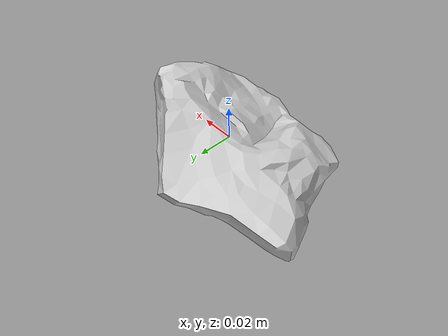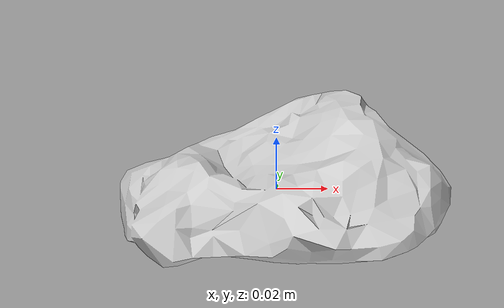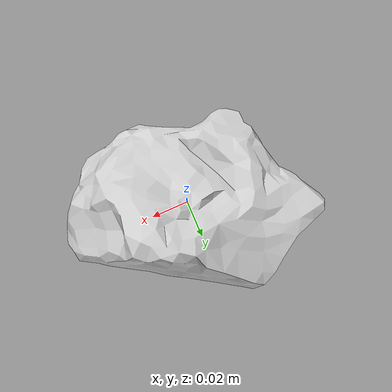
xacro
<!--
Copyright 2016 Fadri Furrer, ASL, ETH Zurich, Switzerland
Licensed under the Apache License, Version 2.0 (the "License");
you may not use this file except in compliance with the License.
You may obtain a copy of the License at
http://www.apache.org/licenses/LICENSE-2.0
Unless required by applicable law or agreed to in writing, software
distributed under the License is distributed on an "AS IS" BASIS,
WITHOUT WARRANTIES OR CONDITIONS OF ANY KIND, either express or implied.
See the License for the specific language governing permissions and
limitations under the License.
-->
<?xml version="1.0"?>

<robot name="stone_2" xmlns:xacro="http://ros.org/wiki/xacro">
  <xacro:property name="mesh_file" value="package://urdf_models/models/stone_2/mesh/stone_2.dae" />
  <xacro:property name="mass" value="1.0" />
  <link name="base_link"></link>

  <joint name="base_joint" type="fixed">
    <origin xyz="0 0 0" rpy="0 0 0" />
    <parent link="base_link" />
    <child link="base_link_inertia" />
  </joint>

  <link name="base_link_inertia">
      <inertial>
        <mass value="${mass}" />  <!-- [kg] -->
        <origin xyz="-0.000322e-1 -0.000145e-1 -0.000170e-1" />
        <inertia ixx="0.019941e-02"  ixy="0.004477e-02"  ixz="-0.002525e-02"
                			               iyy="0.030632e-02"  iyz="-0.002664e-02"
                 								                         izz="0.040836e-02" />
      </inertial>

      <visual>
        <origin xyz="0 0 0" rpy="0 0 0" />
        <geometry>
          <mesh filename="${mesh_file}" scale="1 1 1" />
        </geometry>
		<material name="Gray">
	 	 <color rgba="0.8 0.8 0.8 1"/>
		</material>
      </visual>

      <collision>
        <origin xyz="0 0 0" rpy="0 0 0" />
        <geometry>
          <mesh filename="${mesh_file}" scale="1 1 1" />
        </geometry>
      </collision>
  </link>

  <gazebo reference="base_link">
    <mu1 value="0.1"/>
    <mu2 value="0.1"/>
    <kp  value="5000000.0" />
    <kd  value="1.0" />
    <fdir1 value="1 0 0"/>
    <collision>
      <surface>
        <bounce>
          <restitution_coefficient> 0.0 </restitution_coefficient>
          <threshold>0.</threshold>
        </bounce>
  	    <contact>
  	      <ode>
  	        <max_vel>10</max_vel>
  	        <min_depth>0.001</min_depth>
  	      </ode>
  	    </contact>
      </surface>
    </collision>
    <material name="Gray">
      <color rgba="0.8 0.8 0.8 1"/>
    </material>
    <turnGravityOff>false</turnGravityOff>
  </gazebo>

</robot>
